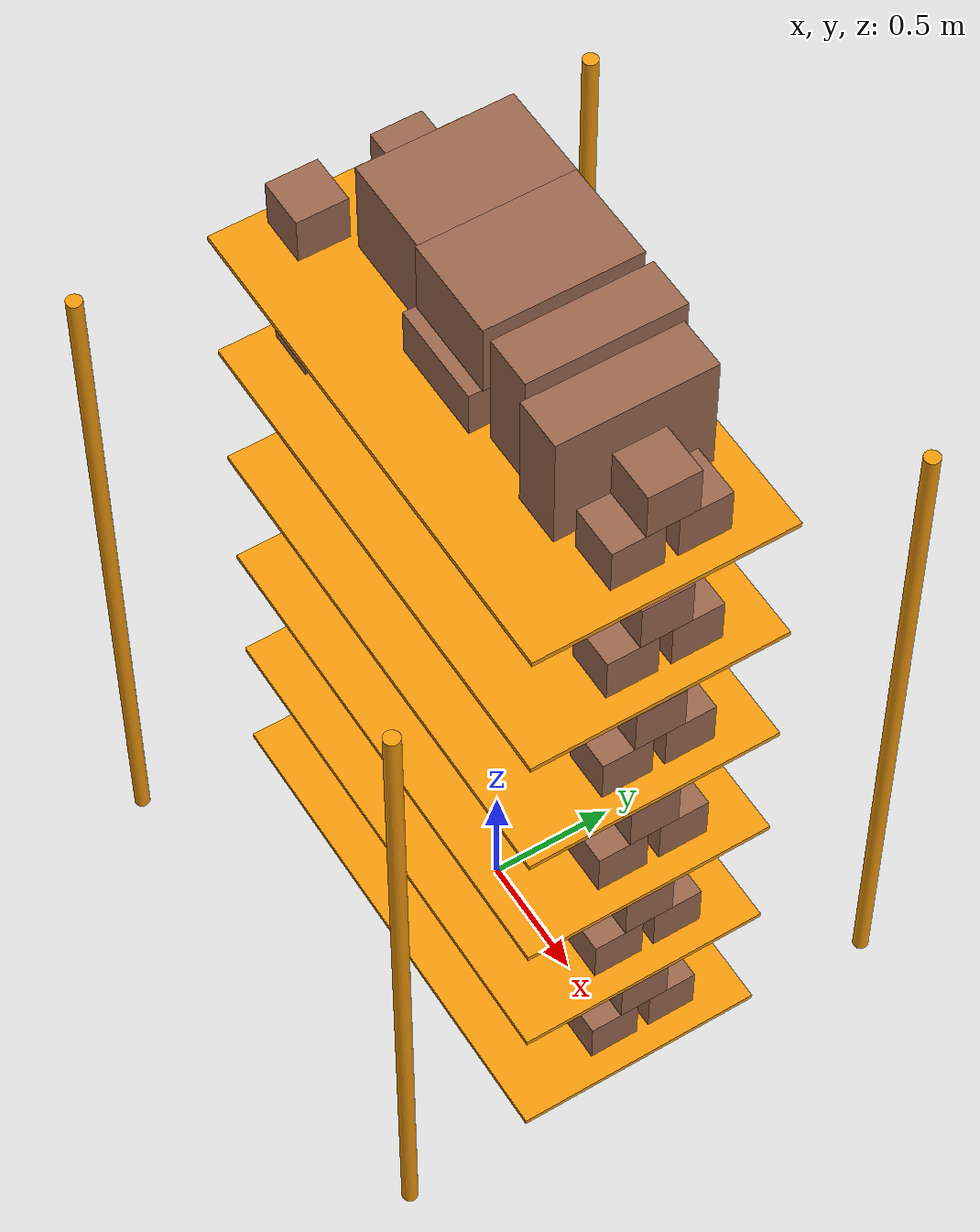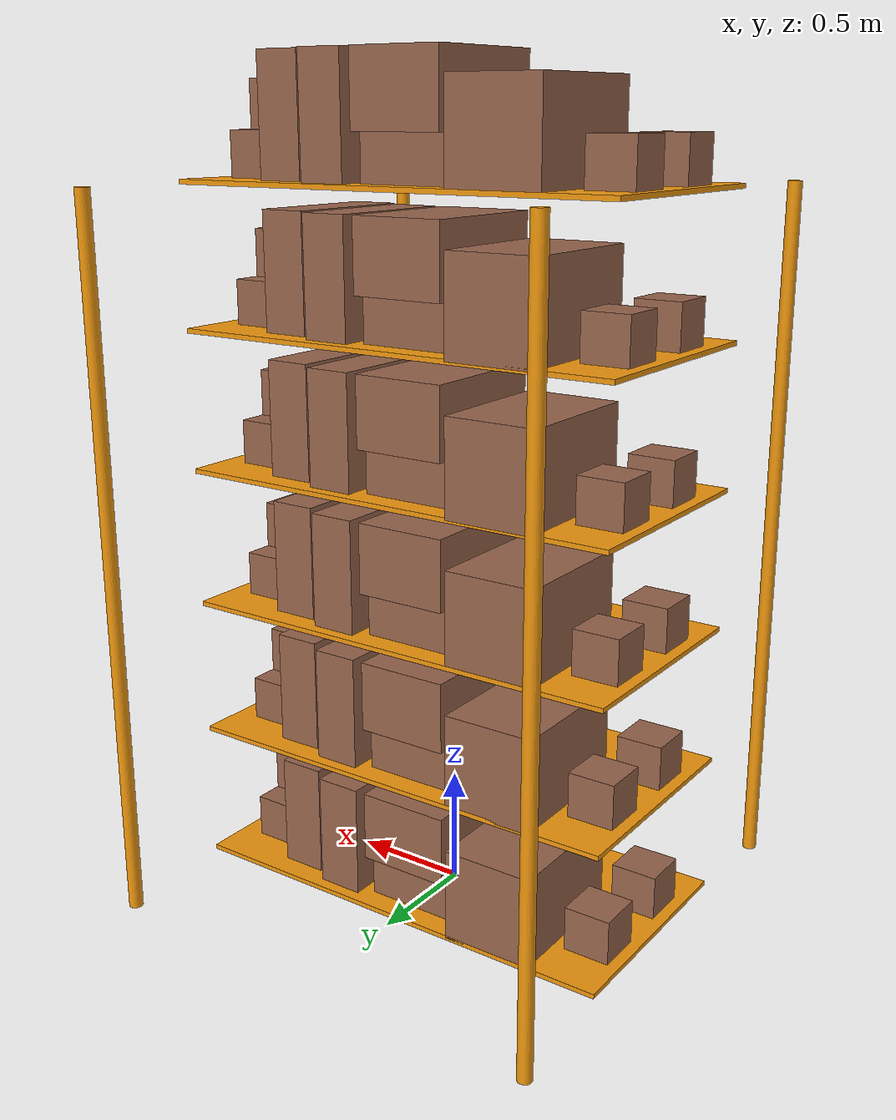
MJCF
<mujoco model="shelves">
  <default>
    <default class="default">
    </default>
  </default>
  <worldbody>
    <body name="leg_rt\" pos="1 1 1.5249999999999999">
      <body name="leg_rt\leg_rt">
        <inertial pos="0 0 0" mass="0.40000000000000002"/>
        <geom name="leg_rt\leg_rt" class="default" type="cylinder" contype="0" conaffinity="0" group="1" size="0.029999999999999999 1.5249999999999999" rgba="0.94999999999999996 0.59999999999999998 0.050000000000000003 1"/>
      </body>
    </body>
    <body name="leg_lt\" pos="-1 1 1.5249999999999999">
      <body name="leg_lt\leg_lt">
        <inertial pos="0 0 0" mass="0.40000000000000002"/>
        <geom name="leg_lt\leg_lt" class="default" type="cylinder" contype="0" conaffinity="0" group="1" size="0.029999999999999999 1.5249999999999999" rgba="0.94999999999999996 0.59999999999999998 0.050000000000000003 1"/>
      </body>
    </body>
    <body name="leg_lb\" pos="-1 -1 1.5249999999999999">
      <body name="leg_lb\leg_lb">
        <inertial pos="0 0 0" mass="0.40000000000000002"/>
        <geom name="leg_lb\leg_lb" class="default" type="cylinder" contype="0" conaffinity="0" group="1" size="0.029999999999999999 1.5249999999999999" rgba="0.94999999999999996 0.59999999999999998 0.050000000000000003 1"/>
      </body>
    </body>
    <body name="leg_rb\" pos="1 -1 1.5249999999999999">
      <body name="leg_rb\leg_rb">
        <inertial pos="0 0 0" mass="0.40000000000000002"/>
        <geom name="leg_rb\leg_rb" class="default" type="cylinder" contype="0" conaffinity="0" group="1" size="0.029999999999999999 1.5249999999999999" rgba="0.94999999999999996 0.59999999999999998 0.050000000000000003 1"/>
      </body>
    </body>
    <body name="shelf_0\" pos="0 0 0.050000000000000003">
      <body name="shelf_0\shelf_0">
        <inertial pos="0 0 0" mass="1"/>
        <geom name="shelf_0\shelf_0" class="default" type="box" contype="0" conaffinity="0" group="1" size="1 0.5 0.01" rgba="0.94999999999999996 0.59999999999999998 0.050000000000000003 1"/>
      </body>
    </body>
    <body name="box_col_0\" pos="0 0 0.050000000000000003">
      <body name="box_col_0\box_0_0\" pos="-0.84999999999999998 0.20000000000000001 0.10000000000000001">
        <body name="box_col_0\box_0_0\box_0_0">
          <inertial pos="0 0 0" mass="0.10000000000000001"/>
          <geom name="box_col_0\box_0_0\box_0_0" class="default" type="box" contype="0" conaffinity="0" group="1" size="0.10000000000000001 0.10000000000000001 0.10000000000000001" rgba="0.59999999999999998 0.40000000000000002 0.29999999999999999 1"/>
        </body>
      </body>
      <body name="box_col_0\box_0_1\" pos="-0.84999999999999998 -0.20000000000000001 0.10000000000000001">
        <body name="box_col_0\box_0_1\box_0_1">
          <inertial pos="0 0 0" mass="0.10000000000000001"/>
          <geom name="box_col_0\box_0_1\box_0_1" class="default" type="box" contype="0" conaffinity="0" group="1" size="0.10000000000000001 0.10000000000000001 0.10000000000000001" rgba="0.59999999999999998 0.40000000000000002 0.29999999999999999 1"/>
        </body>
      </body>
      <body name="box_col_0\box_1\" pos="-0.5 0.20000000000000001 0.20000000000000001">
        <body name="box_col_0\box_1\box_1">
          <inertial pos="0 0 0" mass="0.10000000000000001"/>
          <geom name="box_col_0\box_1\box_1" class="default" type="box" contype="0" conaffinity="0" group="1" size="0.20000000000000001 0.29999999999999999 0.20000000000000001" rgba="0.59999999999999998 0.40000000000000002 0.29999999999999999 1"/>
        </body>
      </body>
      <body name="box_col_0\box_2\" pos="-0.050000000000000003 0.10000000000000001 0.10000000000000001">
        <body name="box_col_0\box_2\box_2">
          <inertial pos="0 0 0" mass="0.10000000000000001"/>
          <geom name="box_col_0\box_2\box_2" class="default" type="box" contype="0" conaffinity="0" group="1" size="0.20000000000000001 0.29999999999999999 0.10000000000000001" rgba="0.59999999999999998 0.40000000000000002 0.29999999999999999 1"/>
        </body>
      </body>
      <body name="box_col_0\box_4\" pos="-0.044999999999999998 0.14999999999999999 0.34999999999999998">
        <body name="box_col_0\box_4\box_4">
          <inertial pos="0 0 0" mass="0.10000000000000001"/>
          <geom name="box_col_0\box_4\box_4" class="default" type="box" contype="0" conaffinity="0" group="1" size="0.20000000000000001 0.29999999999999999 0.14999999999999999" rgba="0.59999999999999998 0.40000000000000002 0.29999999999999999 1"/>
        </body>
      </body>
      <body name="box_col_0\box_3_0\" pos="0.29999999999999999 0.14999999999999999 0.25">
        <body name="box_col_0\box_3_0\box_3_0">
          <inertial pos="0 0 0" mass="0.10000000000000001"/>
          <geom name="box_col_0\box_3_0\box_3_0" class="default" type="box" contype="0" conaffinity="0" group="1" size="0.10000000000000001 0.29999999999999999 0.25" rgba="0.59999999999999998 0.40000000000000002 0.29999999999999999 1"/>
        </body>
      </body>
      <body name="box_col_0\box_3_1\" pos="0.55000000000000004 0.10000000000000001 0.25">
        <body name="box_col_0\box_3_1\box_3_1">
          <inertial pos="0 0 0" mass="0.10000000000000001"/>
          <geom name="box_col_0\box_3_1\box_3_1" class="default" type="box" contype="0" conaffinity="0" group="1" size="0.10000000000000001 0.29999999999999999 0.25" rgba="0.59999999999999998 0.40000000000000002 0.29999999999999999 1"/>
        </body>
      </body>
      <body name="box_col_0\box_0_2\" pos="0.80000000000000004 0.20000000000000001 0.10000000000000001">
        <body name="box_col_0\box_0_2\box_0_2">
          <inertial pos="0 0 0" mass="0.10000000000000001"/>
          <geom name="box_col_0\box_0_2\box_0_2" class="default" type="box" contype="0" conaffinity="0" group="1" size="0.10000000000000001 0.10000000000000001 0.10000000000000001" rgba="0.59999999999999998 0.40000000000000002 0.29999999999999999 1"/>
        </body>
      </body>
      <body name="box_col_0\box_0_3\" pos="0.80000000000000004 -0.050000000000000003 0.10000000000000001">
        <body name="box_col_0\box_0_3\box_0_3">
          <inertial pos="0 0 0" mass="0.10000000000000001"/>
          <geom name="box_col_0\box_0_3\box_0_3" class="default" type="box" contype="0" conaffinity="0" group="1" size="0.10000000000000001 0.10000000000000001 0.10000000000000001" rgba="0.59999999999999998 0.40000000000000002 0.29999999999999999 1"/>
        </body>
      </body>
      <body name="box_col_0\box_0_4\" pos="0.80000000000000004 0.074999999999999997 0.29999999999999999">
        <body name="box_col_0\box_0_4\box_0_4">
          <inertial pos="0 0 0" mass="0.10000000000000001"/>
          <geom name="box_col_0\box_0_4\box_0_4" class="default" type="box" contype="0" conaffinity="0" group="1" size="0.10000000000000001 0.10000000000000001 0.10000000000000001" rgba="0.59999999999999998 0.40000000000000002 0.29999999999999999 1"/>
        </body>
      </body>
    </body>
    <body name="shelf_1\" pos="0 0 0.65000000000000002">
      <body name="shelf_1\shelf_1">
        <inertial pos="0 0 0" mass="1"/>
        <geom name="shelf_1\shelf_1" class="default" type="box" contype="0" conaffinity="0" group="1" size="1 0.5 0.01" rgba="0.94999999999999996 0.59999999999999998 0.050000000000000003 1"/>
      </body>
    </body>
    <body name="box_col_1\" pos="0 0 0.65000000000000002">
      <body name="box_col_1\box_0_0\" pos="-0.84999999999999998 0.20000000000000001 0.10000000000000001">
        <body name="box_col_1\box_0_0\box_0_0">
          <inertial pos="0 0 0" mass="0.10000000000000001"/>
          <geom name="box_col_1\box_0_0\box_0_0" class="default" type="box" contype="0" conaffinity="0" group="1" size="0.10000000000000001 0.10000000000000001 0.10000000000000001" rgba="0.59999999999999998 0.40000000000000002 0.29999999999999999 1"/>
        </body>
      </body>
      <body name="box_col_1\box_0_1\" pos="-0.84999999999999998 -0.20000000000000001 0.10000000000000001">
        <body name="box_col_1\box_0_1\box_0_1">
          <inertial pos="0 0 0" mass="0.10000000000000001"/>
          <geom name="box_col_1\box_0_1\box_0_1" class="default" type="box" contype="0" conaffinity="0" group="1" size="0.10000000000000001 0.10000000000000001 0.10000000000000001" rgba="0.59999999999999998 0.40000000000000002 0.29999999999999999 1"/>
        </body>
      </body>
      <body name="box_col_1\box_1\" pos="-0.5 0.20000000000000001 0.20000000000000001">
        <body name="box_col_1\box_1\box_1">
          <inertial pos="0 0 0" mass="0.10000000000000001"/>
          <geom name="box_col_1\box_1\box_1" class="default" type="box" contype="0" conaffinity="0" group="1" size="0.20000000000000001 0.29999999999999999 0.20000000000000001" rgba="0.59999999999999998 0.40000000000000002 0.29999999999999999 1"/>
        </body>
      </body>
      <body name="box_col_1\box_2\" pos="-0.050000000000000003 0.10000000000000001 0.10000000000000001">
        <body name="box_col_1\box_2\box_2">
          <inertial pos="0 0 0" mass="0.10000000000000001"/>
          <geom name="box_col_1\box_2\box_2" class="default" type="box" contype="0" conaffinity="0" group="1" size="0.20000000000000001 0.29999999999999999 0.10000000000000001" rgba="0.59999999999999998 0.40000000000000002 0.29999999999999999 1"/>
        </body>
      </body>
      <body name="box_col_1\box_4\" pos="-0.044999999999999998 0.14999999999999999 0.34999999999999998">
        <body name="box_col_1\box_4\box_4">
          <inertial pos="0 0 0" mass="0.10000000000000001"/>
          <geom name="box_col_1\box_4\box_4" class="default" type="box" contype="0" conaffinity="0" group="1" size="0.20000000000000001 0.29999999999999999 0.14999999999999999" rgba="0.59999999999999998 0.40000000000000002 0.29999999999999999 1"/>
        </body>
      </body>
      <body name="box_col_1\box_3_0\" pos="0.29999999999999999 0.14999999999999999 0.25">
        <body name="box_col_1\box_3_0\box_3_0">
          <inertial pos="0 0 0" mass="0.10000000000000001"/>
          <geom name="box_col_1\box_3_0\box_3_0" class="default" type="box" contype="0" conaffinity="0" group="1" size="0.10000000000000001 0.29999999999999999 0.25" rgba="0.59999999999999998 0.40000000000000002 0.29999999999999999 1"/>
        </body>
      </body>
      <body name="box_col_1\box_3_1\" pos="0.55000000000000004 0.10000000000000001 0.25">
        <body name="box_col_1\box_3_1\box_3_1">
          <inertial pos="0 0 0" mass="0.10000000000000001"/>
          <geom name="box_col_1\box_3_1\box_3_1" class="default" type="box" contype="0" conaffinity="0" group="1" size="0.10000000000000001 0.29999999999999999 0.25" rgba="0.59999999999999998 0.40000000000000002 0.29999999999999999 1"/>
        </body>
      </body>
      <body name="box_col_1\box_0_2\" pos="0.80000000000000004 0.20000000000000001 0.10000000000000001">
        <body name="box_col_1\box_0_2\box_0_2">
          <inertial pos="0 0 0" mass="0.10000000000000001"/>
          <geom name="box_col_1\box_0_2\box_0_2" class="default" type="box" contype="0" conaffinity="0" group="1" size="0.10000000000000001 0.10000000000000001 0.10000000000000001" rgba="0.59999999999999998 0.40000000000000002 0.29999999999999999 1"/>
        </body>
      </body>
      <body name="box_col_1\box_0_3\" pos="0.80000000000000004 -0.050000000000000003 0.10000000000000001">
        <body name="box_col_1\box_0_3\box_0_3">
          <inertial pos="0 0 0" mass="0.10000000000000001"/>
          <geom name="box_col_1\box_0_3\box_0_3" class="default" type="box" contype="0" conaffinity="0" group="1" size="0.10000000000000001 0.10000000000000001 0.10000000000000001" rgba="0.59999999999999998 0.40000000000000002 0.29999999999999999 1"/>
        </body>
      </body>
      <body name="box_col_1\box_0_4\" pos="0.80000000000000004 0.074999999999999997 0.29999999999999999">
        <body name="box_col_1\box_0_4\box_0_4">
          <inertial pos="0 0 0" mass="0.10000000000000001"/>
          <geom name="box_col_1\box_0_4\box_0_4" class="default" type="box" contype="0" conaffinity="0" group="1" size="0.10000000000000001 0.10000000000000001 0.10000000000000001" rgba="0.59999999999999998 0.40000000000000002 0.29999999999999999 1"/>
        </body>
      </body>
    </body>
    <body name="shelf_2\" pos="0 0 1.25">
      <body name="shelf_2\shelf_2">
        <inertial pos="0 0 0" mass="1"/>
        <geom name="shelf_2\shelf_2" class="default" type="box" contype="0" conaffinity="0" group="1" size="1 0.5 0.01" rgba="0.94999999999999996 0.59999999999999998 0.050000000000000003 1"/>
      </body>
    </body>
    <body name="box_col_2\" pos="0 0 1.25">
      <body name="box_col_2\box_0_0\" pos="-0.84999999999999998 0.20000000000000001 0.10000000000000001">
        <body name="box_col_2\box_0_0\box_0_0">
          <inertial pos="0 0 0" mass="0.10000000000000001"/>
          <geom name="box_col_2\box_0_0\box_0_0" class="default" type="box" contype="0" conaffinity="0" group="1" size="0.10000000000000001 0.10000000000000001 0.10000000000000001" rgba="0.59999999999999998 0.40000000000000002 0.29999999999999999 1"/>
        </body>
      </body>
      <body name="box_col_2\box_0_1\" pos="-0.84999999999999998 -0.20000000000000001 0.10000000000000001">
        <body name="box_col_2\box_0_1\box_0_1">
          <inertial pos="0 0 0" mass="0.10000000000000001"/>
          <geom name="box_col_2\box_0_1\box_0_1" class="default" type="box" contype="0" conaffinity="0" group="1" size="0.10000000000000001 0.10000000000000001 0.10000000000000001" rgba="0.59999999999999998 0.40000000000000002 0.29999999999999999 1"/>
        </body>
      </body>
      <body name="box_col_2\box_1\" pos="-0.5 0.20000000000000001 0.20000000000000001">
        <body name="box_col_2\box_1\box_1">
          <inertial pos="0 0 0" mass="0.10000000000000001"/>
          <geom name="box_col_2\box_1\box_1" class="default" type="box" contype="0" conaffinity="0" group="1" size="0.20000000000000001 0.29999999999999999 0.20000000000000001" rgba="0.59999999999999998 0.40000000000000002 0.29999999999999999 1"/>
        </body>
      </body>
      <body name="box_col_2\box_2\" pos="-0.050000000000000003 0.10000000000000001 0.10000000000000001">
        <body name="box_col_2\box_2\box_2">
          <inertial pos="0 0 0" mass="0.10000000000000001"/>
          <geom name="box_col_2\box_2\box_2" class="default" type="box" contype="0" conaffinity="0" group="1" size="0.20000000000000001 0.29999999999999999 0.10000000000000001" rgba="0.59999999999999998 0.40000000000000002 0.29999999999999999 1"/>
        </body>
      </body>
      <body name="box_col_2\box_4\" pos="-0.044999999999999998 0.14999999999999999 0.34999999999999998">
        <body name="box_col_2\box_4\box_4">
          <inertial pos="0 0 0" mass="0.10000000000000001"/>
          <geom name="box_col_2\box_4\box_4" class="default" type="box" contype="0" conaffinity="0" group="1" size="0.20000000000000001 0.29999999999999999 0.14999999999999999" rgba="0.59999999999999998 0.40000000000000002 0.29999999999999999 1"/>
        </body>
      </body>
      <body name="box_col_2\box_3_0\" pos="0.29999999999999999 0.14999999999999999 0.25">
        <body name="box_col_2\box_3_0\box_3_0">
          <inertial pos="0 0 0" mass="0.10000000000000001"/>
          <geom name="box_col_2\box_3_0\box_3_0" class="default" type="box" contype="0" conaffinity="0" group="1" size="0.10000000000000001 0.29999999999999999 0.25" rgba="0.59999999999999998 0.40000000000000002 0.29999999999999999 1"/>
        </body>
      </body>
      <body name="box_col_2\box_3_1\" pos="0.55000000000000004 0.10000000000000001 0.25">
        <body name="box_col_2\box_3_1\box_3_1">
          <inertial pos="0 0 0" mass="0.10000000000000001"/>
          <geom name="box_col_2\box_3_1\box_3_1" class="default" type="box" contype="0" conaffinity="0" group="1" size="0.10000000000000001 0.29999999999999999 0.25" rgba="0.59999999999999998 0.40000000000000002 0.29999999999999999 1"/>
        </body>
      </body>
      <body name="box_col_2\box_0_2\" pos="0.80000000000000004 0.20000000000000001 0.10000000000000001">
        <body name="box_col_2\box_0_2\box_0_2">
          <inertial pos="0 0 0" mass="0.10000000000000001"/>
          <geom name="box_col_2\box_0_2\box_0_2" class="default" type="box" contype="0" conaffinity="0" group="1" size="0.10000000000000001 0.10000000000000001 0.10000000000000001" rgba="0.59999999999999998 0.40000000000000002 0.29999999999999999 1"/>
        </body>
      </body>
      <body name="box_col_2\box_0_3\" pos="0.80000000000000004 -0.050000000000000003 0.10000000000000001">
        <body name="box_col_2\box_0_3\box_0_3">
          <inertial pos="0 0 0" mass="0.10000000000000001"/>
          <geom name="box_col_2\box_0_3\box_0_3" class="default" type="box" contype="0" conaffinity="0" group="1" size="0.10000000000000001 0.10000000000000001 0.10000000000000001" rgba="0.59999999999999998 0.40000000000000002 0.29999999999999999 1"/>
        </body>
      </body>
      <body name="box_col_2\box_0_4\" pos="0.80000000000000004 0.074999999999999997 0.29999999999999999">
        <body name="box_col_2\box_0_4\box_0_4">
          <inertial pos="0 0 0" mass="0.10000000000000001"/>
          <geom name="box_col_2\box_0_4\box_0_4" class="default" type="box" contype="0" conaffinity="0" group="1" size="0.10000000000000001 0.10000000000000001 0.10000000000000001" rgba="0.59999999999999998 0.40000000000000002 0.29999999999999999 1"/>
        </body>
      </body>
    </body>
    <body name="shelf_3\" pos="0 0 1.8500000000000001">
      <body name="shelf_3\shelf_3">
        <inertial pos="0 0 0" mass="1"/>
        <geom name="shelf_3\shelf_3" class="default" type="box" contype="0" conaffinity="0" group="1" size="1 0.5 0.01" rgba="0.94999999999999996 0.59999999999999998 0.050000000000000003 1"/>
      </body>
    </body>
    <body name="box_col_3\" pos="0 0 1.8500000000000001">
      <body name="box_col_3\box_0_0\" pos="-0.84999999999999998 0.20000000000000001 0.10000000000000001">
        <body name="box_col_3\box_0_0\box_0_0">
          <inertial pos="0 0 0" mass="0.10000000000000001"/>
          <geom name="box_col_3\box_0_0\box_0_0" class="default" type="box" contype="0" conaffinity="0" group="1" size="0.10000000000000001 0.10000000000000001 0.10000000000000001" rgba="0.59999999999999998 0.40000000000000002 0.29999999999999999 1"/>
        </body>
      </body>
      <body name="box_col_3\box_0_1\" pos="-0.84999999999999998 -0.20000000000000001 0.10000000000000001">
        <body name="box_col_3\box_0_1\box_0_1">
          <inertial pos="0 0 0" mass="0.10000000000000001"/>
          <geom name="box_col_3\box_0_1\box_0_1" class="default" type="box" contype="0" conaffinity="0" group="1" size="0.10000000000000001 0.10000000000000001 0.10000000000000001" rgba="0.59999999999999998 0.40000000000000002 0.29999999999999999 1"/>
        </body>
      </body>
      <body name="box_col_3\box_1\" pos="-0.5 0.20000000000000001 0.20000000000000001">
        <body name="box_col_3\box_1\box_1">
          <inertial pos="0 0 0" mass="0.10000000000000001"/>
          <geom name="box_col_3\box_1\box_1" class="default" type="box" contype="0" conaffinity="0" group="1" size="0.20000000000000001 0.29999999999999999 0.20000000000000001" rgba="0.59999999999999998 0.40000000000000002 0.29999999999999999 1"/>
        </body>
      </body>
      <body name="box_col_3\box_2\" pos="-0.050000000000000003 0.10000000000000001 0.10000000000000001">
        <body name="box_col_3\box_2\box_2">
          <inertial pos="0 0 0" mass="0.10000000000000001"/>
          <geom name="box_col_3\box_2\box_2" class="default" type="box" contype="0" conaffinity="0" group="1" size="0.20000000000000001 0.29999999999999999 0.10000000000000001" rgba="0.59999999999999998 0.40000000000000002 0.29999999999999999 1"/>
        </body>
      </body>
      <body name="box_col_3\box_4\" pos="-0.044999999999999998 0.14999999999999999 0.34999999999999998">
        <body name="box_col_3\box_4\box_4">
          <inertial pos="0 0 0" mass="0.10000000000000001"/>
          <geom name="box_col_3\box_4\box_4" class="default" type="box" contype="0" conaffinity="0" group="1" size="0.20000000000000001 0.29999999999999999 0.14999999999999999" rgba="0.59999999999999998 0.40000000000000002 0.29999999999999999 1"/>
        </body>
      </body>
      <body name="box_col_3\box_3_0\" pos="0.29999999999999999 0.14999999999999999 0.25">
        <body name="box_col_3\box_3_0\box_3_0">
          <inertial pos="0 0 0" mass="0.10000000000000001"/>
          <geom name="box_col_3\box_3_0\box_3_0" class="default" type="box" contype="0" conaffinity="0" group="1" size="0.10000000000000001 0.29999999999999999 0.25" rgba="0.59999999999999998 0.40000000000000002 0.29999999999999999 1"/>
        </body>
      </body>
      <body name="box_col_3\box_3_1\" pos="0.55000000000000004 0.10000000000000001 0.25">
        <body name="box_col_3\box_3_1\box_3_1">
          <inertial pos="0 0 0" mass="0.10000000000000001"/>
          <geom name="box_col_3\box_3_1\box_3_1" class="default" type="box" contype="0" conaffinity="0" group="1" size="0.10000000000000001 0.29999999999999999 0.25" rgba="0.59999999999999998 0.40000000000000002 0.29999999999999999 1"/>
        </body>
      </body>
      <body name="box_col_3\box_0_2\" pos="0.80000000000000004 0.20000000000000001 0.10000000000000001">
        <body name="box_col_3\box_0_2\box_0_2">
          <inertial pos="0 0 0" mass="0.10000000000000001"/>
          <geom name="box_col_3\box_0_2\box_0_2" class="default" type="box" contype="0" conaffinity="0" group="1" size="0.10000000000000001 0.10000000000000001 0.10000000000000001" rgba="0.59999999999999998 0.40000000000000002 0.29999999999999999 1"/>
        </body>
      </body>
      <body name="box_col_3\box_0_3\" pos="0.80000000000000004 -0.050000000000000003 0.10000000000000001">
        <body name="box_col_3\box_0_3\box_0_3">
          <inertial pos="0 0 0" mass="0.10000000000000001"/>
          <geom name="box_col_3\box_0_3\box_0_3" class="default" type="box" contype="0" conaffinity="0" group="1" size="0.10000000000000001 0.10000000000000001 0.10000000000000001" rgba="0.59999999999999998 0.40000000000000002 0.29999999999999999 1"/>
        </body>
      </body>
      <body name="box_col_3\box_0_4\" pos="0.80000000000000004 0.074999999999999997 0.29999999999999999">
        <body name="box_col_3\box_0_4\box_0_4">
          <inertial pos="0 0 0" mass="0.10000000000000001"/>
          <geom name="box_col_3\box_0_4\box_0_4" class="default" type="box" contype="0" conaffinity="0" group="1" size="0.10000000000000001 0.10000000000000001 0.10000000000000001" rgba="0.59999999999999998 0.40000000000000002 0.29999999999999999 1"/>
        </body>
      </body>
    </body>
    <body name="shelf_4\" pos="0 0 2.4500000000000002">
      <body name="shelf_4\shelf_4">
        <inertial pos="0 0 0" mass="1"/>
        <geom name="shelf_4\shelf_4" class="default" type="box" contype="0" conaffinity="0" group="1" size="1 0.5 0.01" rgba="0.94999999999999996 0.59999999999999998 0.050000000000000003 1"/>
      </body>
    </body>
    <body name="box_col_4\" pos="0 0 2.4500000000000002">
      <body name="box_col_4\box_0_0\" pos="-0.84999999999999998 0.20000000000000001 0.10000000000000001">
        <body name="box_col_4\box_0_0\box_0_0">
          <inertial pos="0 0 0" mass="0.10000000000000001"/>
          <geom name="box_col_4\box_0_0\box_0_0" class="default" type="box" contype="0" conaffinity="0" group="1" size="0.10000000000000001 0.10000000000000001 0.10000000000000001" rgba="0.59999999999999998 0.40000000000000002 0.29999999999999999 1"/>
        </body>
      </body>
      <body name="box_col_4\box_0_1\" pos="-0.84999999999999998 -0.20000000000000001 0.10000000000000001">
        <body name="box_col_4\box_0_1\box_0_1">
          <inertial pos="0 0 0" mass="0.10000000000000001"/>
          <geom name="box_col_4\box_0_1\box_0_1" class="default" type="box" contype="0" conaffinity="0" group="1" size="0.10000000000000001 0.10000000000000001 0.10000000000000001" rgba="0.59999999999999998 0.40000000000000002 0.29999999999999999 1"/>
        </body>
      </body>
      <body name="box_col_4\box_1\" pos="-0.5 0.20000000000000001 0.20000000000000001">
        <body name="box_col_4\box_1\box_1">
          <inertial pos="0 0 0" mass="0.10000000000000001"/>
          <geom name="box_col_4\box_1\box_1" class="default" type="box" contype="0" conaffinity="0" group="1" size="0.20000000000000001 0.29999999999999999 0.20000000000000001" rgba="0.59999999999999998 0.40000000000000002 0.29999999999999999 1"/>
        </body>
      </body>
      <body name="box_col_4\box_2\" pos="-0.050000000000000003 0.10000000000000001 0.10000000000000001">
        <body name="box_col_4\box_2\box_2">
          <inertial pos="0 0 0" mass="0.10000000000000001"/>
          <geom name="box_col_4\box_2\box_2" class="default" type="box" contype="0" conaffinity="0" group="1" size="0.20000000000000001 0.29999999999999999 0.10000000000000001" rgba="0.59999999999999998 0.40000000000000002 0.29999999999999999 1"/>
        </body>
      </body>
      <body name="box_col_4\box_4\" pos="-0.044999999999999998 0.14999999999999999 0.34999999999999998">
        <body name="box_col_4\box_4\box_4">
          <inertial pos="0 0 0" mass="0.10000000000000001"/>
          <geom name="box_col_4\box_4\box_4" class="default" type="box" contype="0" conaffinity="0" group="1" size="0.20000000000000001 0.29999999999999999 0.14999999999999999" rgba="0.59999999999999998 0.40000000000000002 0.29999999999999999 1"/>
        </body>
      </body>
      <body name="box_col_4\box_3_0\" pos="0.29999999999999999 0.14999999999999999 0.25">
        <body name="box_col_4\box_3_0\box_3_0">
          <inertial pos="0 0 0" mass="0.10000000000000001"/>
          <geom name="box_col_4\box_3_0\box_3_0" class="default" type="box" contype="0" conaffinity="0" group="1" size="0.10000000000000001 0.29999999999999999 0.25" rgba="0.59999999999999998 0.40000000000000002 0.29999999999999999 1"/>
        </body>
      </body>
      <body name="box_col_4\box_3_1\" pos="0.55000000000000004 0.10000000000000001 0.25">
        <body name="box_col_4\box_3_1\box_3_1">
          <inertial pos="0 0 0" mass="0.10000000000000001"/>
          <geom name="box_col_4\box_3_1\box_3_1" class="default" type="box" contype="0" conaffinity="0" group="1" size="0.10000000000000001 0.29999999999999999 0.25" rgba="0.59999999999999998 0.40000000000000002 0.29999999999999999 1"/>
        </body>
      </body>
      <body name="box_col_4\box_0_2\" pos="0.80000000000000004 0.20000000000000001 0.10000000000000001">
        <body name="box_col_4\box_0_2\box_0_2">
          <inertial pos="0 0 0" mass="0.10000000000000001"/>
          <geom name="box_col_4\box_0_2\box_0_2" class="default" type="box" contype="0" conaffinity="0" group="1" size="0.10000000000000001 0.10000000000000001 0.10000000000000001" rgba="0.59999999999999998 0.40000000000000002 0.29999999999999999 1"/>
        </body>
      </body>
      <body name="box_col_4\box_0_3\" pos="0.80000000000000004 -0.050000000000000003 0.10000000000000001">
        <body name="box_col_4\box_0_3\box_0_3">
          <inertial pos="0 0 0" mass="0.10000000000000001"/>
          <geom name="box_col_4\box_0_3\box_0_3" class="default" type="box" contype="0" conaffinity="0" group="1" size="0.10000000000000001 0.10000000000000001 0.10000000000000001" rgba="0.59999999999999998 0.40000000000000002 0.29999999999999999 1"/>
        </body>
      </body>
      <body name="box_col_4\box_0_4\" pos="0.80000000000000004 0.074999999999999997 0.29999999999999999">
        <body name="box_col_4\box_0_4\box_0_4">
          <inertial pos="0 0 0" mass="0.10000000000000001"/>
          <geom name="box_col_4\box_0_4\box_0_4" class="default" type="box" contype="0" conaffinity="0" group="1" size="0.10000000000000001 0.10000000000000001 0.10000000000000001" rgba="0.59999999999999998 0.40000000000000002 0.29999999999999999 1"/>
        </body>
      </body>
    </body>
    <body name="shelf_5\" pos="0 0 3.0500000000000003">
      <body name="shelf_5\shelf_5">
        <inertial pos="0 0 0" mass="1"/>
        <geom name="shelf_5\shelf_5" class="default" type="box" contype="0" conaffinity="0" group="1" size="1 0.5 0.01" rgba="0.94999999999999996 0.59999999999999998 0.050000000000000003 1"/>
      </body>
    </body>
    <body name="box_col_5\" pos="0 0 3.0500000000000003">
      <body name="box_col_5\box_0_0\" pos="-0.84999999999999998 0.20000000000000001 0.10000000000000001">
        <body name="box_col_5\box_0_0\box_0_0">
          <inertial pos="0 0 0" mass="0.10000000000000001"/>
          <geom name="box_col_5\box_0_0\box_0_0" class="default" type="box" contype="0" conaffinity="0" group="1" size="0.10000000000000001 0.10000000000000001 0.10000000000000001" rgba="0.59999999999999998 0.40000000000000002 0.29999999999999999 1"/>
        </body>
      </body>
      <body name="box_col_5\box_0_1\" pos="-0.84999999999999998 -0.20000000000000001 0.10000000000000001">
        <body name="box_col_5\box_0_1\box_0_1">
          <inertial pos="0 0 0" mass="0.10000000000000001"/>
          <geom name="box_col_5\box_0_1\box_0_1" class="default" type="box" contype="0" conaffinity="0" group="1" size="0.10000000000000001 0.10000000000000001 0.10000000000000001" rgba="0.59999999999999998 0.40000000000000002 0.29999999999999999 1"/>
        </body>
      </body>
      <body name="box_col_5\box_1\" pos="-0.5 0.20000000000000001 0.20000000000000001">
        <body name="box_col_5\box_1\box_1">
          <inertial pos="0 0 0" mass="0.10000000000000001"/>
          <geom name="box_col_5\box_1\box_1" class="default" type="box" contype="0" conaffinity="0" group="1" size="0.20000000000000001 0.29999999999999999 0.20000000000000001" rgba="0.59999999999999998 0.40000000000000002 0.29999999999999999 1"/>
        </body>
      </body>
      <body name="box_col_5\box_2\" pos="-0.050000000000000003 0.10000000000000001 0.10000000000000001">
        <body name="box_col_5\box_2\box_2">
          <inertial pos="0 0 0" mass="0.10000000000000001"/>
          <geom name="box_col_5\box_2\box_2" class="default" type="box" contype="0" conaffinity="0" group="1" size="0.20000000000000001 0.29999999999999999 0.10000000000000001" rgba="0.59999999999999998 0.40000000000000002 0.29999999999999999 1"/>
        </body>
      </body>
      <body name="box_col_5\box_4\" pos="-0.044999999999999998 0.14999999999999999 0.34999999999999998">
        <body name="box_col_5\box_4\box_4">
          <inertial pos="0 0 0" mass="0.10000000000000001"/>
          <geom name="box_col_5\box_4\box_4" class="default" type="box" contype="0" conaffinity="0" group="1" size="0.20000000000000001 0.29999999999999999 0.14999999999999999" rgba="0.59999999999999998 0.40000000000000002 0.29999999999999999 1"/>
        </body>
      </body>
      <body name="box_col_5\box_3_0\" pos="0.29999999999999999 0.14999999999999999 0.25">
        <body name="box_col_5\box_3_0\box_3_0">
          <inertial pos="0 0 0" mass="0.10000000000000001"/>
          <geom name="box_col_5\box_3_0\box_3_0" class="default" type="box" contype="0" conaffinity="0" group="1" size="0.10000000000000001 0.29999999999999999 0.25" rgba="0.59999999999999998 0.40000000000000002 0.29999999999999999 1"/>
        </body>
      </body>
      <body name="box_col_5\box_3_1\" pos="0.55000000000000004 0.10000000000000001 0.25">
        <body name="box_col_5\box_3_1\box_3_1">
          <inertial pos="0 0 0" mass="0.10000000000000001"/>
          <geom name="box_col_5\box_3_1\box_3_1" class="default" type="box" contype="0" conaffinity="0" group="1" size="0.10000000000000001 0.29999999999999999 0.25" rgba="0.59999999999999998 0.40000000000000002 0.29999999999999999 1"/>
        </body>
      </body>
      <body name="box_col_5\box_0_2\" pos="0.80000000000000004 0.20000000000000001 0.10000000000000001">
        <body name="box_col_5\box_0_2\box_0_2">
          <inertial pos="0 0 0" mass="0.10000000000000001"/>
          <geom name="box_col_5\box_0_2\box_0_2" class="default" type="box" contype="0" conaffinity="0" group="1" size="0.10000000000000001 0.10000000000000001 0.10000000000000001" rgba="0.59999999999999998 0.40000000000000002 0.29999999999999999 1"/>
        </body>
      </body>
      <body name="box_col_5\box_0_3\" pos="0.80000000000000004 -0.050000000000000003 0.10000000000000001">
        <body name="box_col_5\box_0_3\box_0_3">
          <inertial pos="0 0 0" mass="0.10000000000000001"/>
          <geom name="box_col_5\box_0_3\box_0_3" class="default" type="box" contype="0" conaffinity="0" group="1" size="0.10000000000000001 0.10000000000000001 0.10000000000000001" rgba="0.59999999999999998 0.40000000000000002 0.29999999999999999 1"/>
        </body>
      </body>
      <body name="box_col_5\box_0_4\" pos="0.80000000000000004 0.074999999999999997 0.29999999999999999">
        <body name="box_col_5\box_0_4\box_0_4">
          <inertial pos="0 0 0" mass="0.10000000000000001"/>
          <geom name="box_col_5\box_0_4\box_0_4" class="default" type="box" contype="0" conaffinity="0" group="1" size="0.10000000000000001 0.10000000000000001 0.10000000000000001" rgba="0.59999999999999998 0.40000000000000002 0.29999999999999999 1"/>
        </body>
      </body>
    </body>
  </worldbody>
</mujoco>
